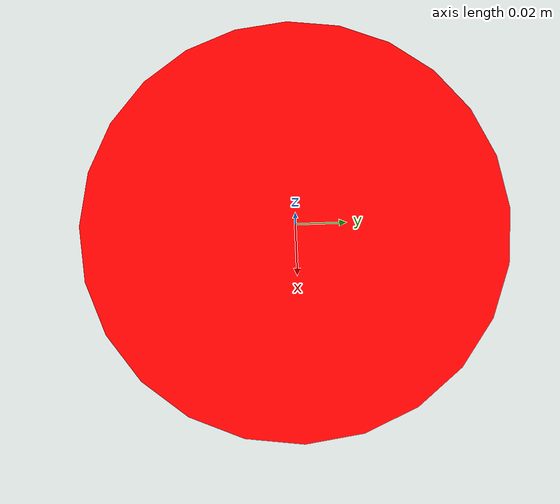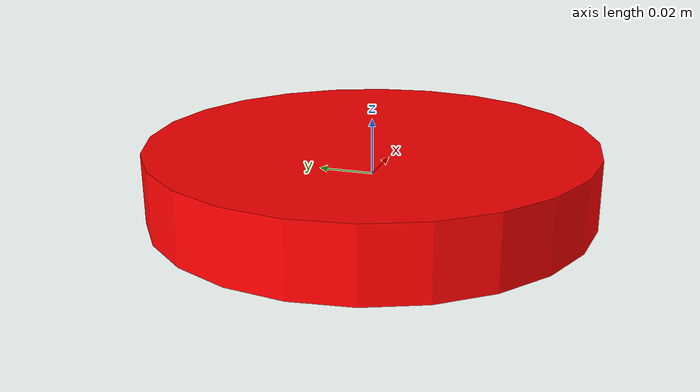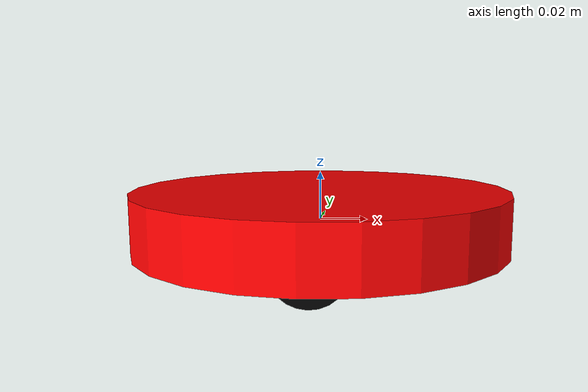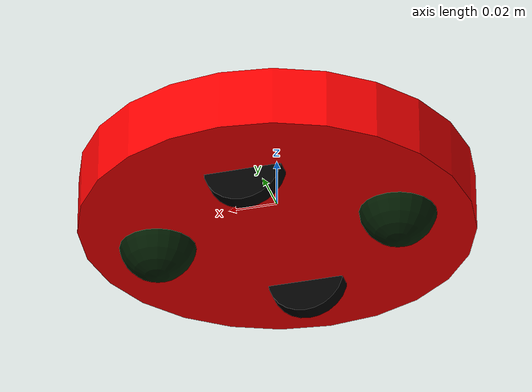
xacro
<?xml version='1.0'?>

<robot name="robot" xmlns:xacro="http://www.ros.org/wiki/xacro">

<xacro:include filename="$(find mybot)/urdf/mybot.gazebo" />

<!-- CHASSIS -->

<link name="base_link">
        <visual>
            <geometry>
                <cylinder radius="0.08" length="0.025"/>
            </geometry>
            <material name="red">
                <color rgba="1 0.0 0.0 1"/>
            </material>
        </visual>

        <collision>
            <geometry>
                <!-- Height, width, depth -->
                <cylinder radius="0.08" length="0.025"/>
            </geometry>
        </collision>

        <inertial>
            <mass value="0.8"/>
            <inertia ixx="0.013216" ixy="0" ixz="0" iyy="0.013216" iyz="0.0" izz="0.00256"/>
        </inertial>
    </link>

<!-- WHEEL LINKS -->

  <link name="front_wheel">
        <visual>
            <geometry>
                <sphere radius="0.016"/>
            </geometry>
            <material name="black">
                <color rgba="0.0 0.1 0.0 1"/>
            </material>
        </visual>

        <collision>
            <geometry>
                <sphere radius="0.016"/>
            </geometry>
        </collision>

        <inertial>
            <mass value="0.035"/>
            <inertia ixx="0.000003584" ixy="0" ixz="0" iyy="0.000003584" iyz="0.0" izz="0.000003584"/>
        </inertial>
    </link>

    <link name="back_wheel">
        <visual>
            <geometry>
                <sphere radius="0.016"/>
            </geometry>
            <material name="black">
                <color rgba="0.0 0.1 0.0 1"/>
            </material>
        </visual>

        <collision>
            <geometry>
                <sphere radius="0.016"/>
            </geometry>
        </collision>

        <inertial>
            <mass value="0.035"/>
            <inertia ixx="0.000003584" ixy="0" ixz="0" iyy="0.000003584" iyz="0.0" izz="0.000003584"/>
        </inertial>
    </link>

    <link name="right_wheel">
        <visual>
            <geometry>
                <cylinder radius="0.016" length="0.007"/>
            </geometry>
            <material name="black">
                <color rgba="0.0 0.0 0.0 1"/>
            </material>
        </visual>

        <collision>
            <geometry>
                <cylinder radius="0.016" length="0.007"/>
            </geometry>
        </collision>

        <inertial>
            <mass value="0.0032"/>
            <inertia ixx="0.00000021787" ixy="0" ixz="0" iyy="0.00000021787" iyz="0.0" izz="0.0000004096"/>
        </inertial>
    </link>

    <link name="left_wheel">
        <visual>
            <geometry>
                <cylinder radius="0.016" length="0.007"/>
            </geometry>
            <material name="black">
                <color rgba="0.0 0.0 0.0 1"/>
            </material>
        </visual>

        <collision>
            <geometry>
                <cylinder radius="0.016" length="0.007"/>
            </geometry>
        </collision>

        <inertial>
            <mass value="0.0032"/>
            <inertia ixx="0.00000021787" ixy="0" ixz="0" iyy="0.00000021787" iyz="0.0" izz="0.0000004096"/>
        </inertial>
    </link>

   <link name="laser_scanner">
        <visual>
            <geometry>
                <box size="0.01 0.01 0.01"/>
            </geometry>
        </visual>

        <collision>
            <geometry>
                <box size="0.01 0.01 0.01"/>
            </geometry>
        </collision>

        <inertial>
        </inertial>
    </link>

<!-- WHEEL JOINTS -->

    <joint name="front_wheel_joint" type="fixed">  <!-- continuous -->
        <axis xyz="0.0 0.0 1"/>
        <parent link="base_link"/>
        <child link="front_wheel"/>
        <origin xyz="0.05 0.0 -0.01" rpy="0.0 0.0 0.0"/>
    </joint>

    <joint name="back_wheel_joint" type="fixed">  <!-- continuous -->
        <axis xyz="0.0 0.0 1"/>
        <parent link="base_link"/>
        <child link="back_wheel"/>
        <origin xyz="-0.05 0.0 -0.01" rpy="0.0 0.0 0.0"/>
    </joint>

    <joint name="right_wheel_joint" type="continuous">
        <axis xyz="0.0 0.0 1"/>
        <parent link="base_link"/>
        <child link="right_wheel"/>
        <origin xyz="0 -0.045 -0.01" rpy="-1.5708 0.0 0.0"/>
    </joint>

    <joint name="left_wheel_joint" type="continuous">
        <axis xyz="0.0 0.0 1"/>
        <parent link="base_link"/>
        <child link="left_wheel"/>
        <origin xyz="0  0.045 -0.01" rpy="-1.5708 0.0 0.0"/>
    </joint>

    <joint name="laser_joint" type="fixed">
        <axis xyz="0.0 0.0 1.0"/>
        <origin xyz="-0.06 0.0 0.0" rpy="0.0 0.0 0.0"/>
        <parent link="base_link"/>
        <child link="laser_scanner"/>
    </joint>

<!-- ULTRASONIC SENSOR -->

<!-- ULTRASONIC SENSOR JOINTS -->

<!-- HOKUYO LASER -->

<!-- HOKUYO LASER JOINT -->

<!-- DEPTH CAMERA -->

<!-- DEPTH CAMERA JOINT -->

<!-- CAMERA -->

<!-- CAMERA JOINT -->

</robot>
